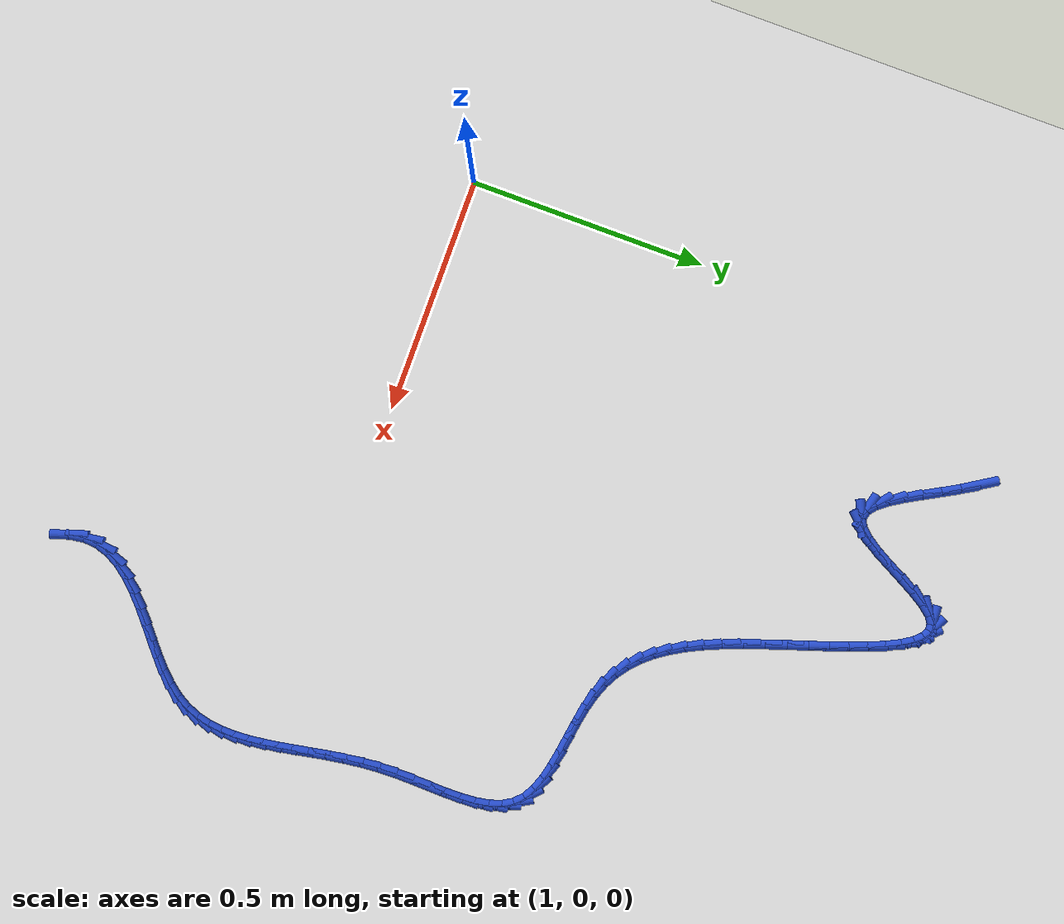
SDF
<sdf version="1.6">
 <world name="default">
  <model name="ground_plane">
   <static>1</static>
   <link name="link">
    <collision name="collision">
     <geometry><plane><normal>0 0 1</normal><size>100 100</size></plane></geometry>
     <surface><friction><ode><mu>100</mu><mu2>50</mu2></ode></friction></surface>
    </collision>
    <visual name="visual">
     <cast_shadows>0</cast_shadows>
     <geometry><plane><normal>0 0 1</normal><size>100 100</size></plane></geometry>
     <material>
      <script><uri>file://media/materials/scripts/gazebo.material</uri><name>Gazebo/WhiteGlow</name></script>
     </material>
    </visual>
   </link>
  </model>
  <model name="line">
   <link name="link_64">
    <pose>1.2318281928721742 1.193154807665097 0.01 0 1.57 -1.0102359897111801</pose>
    <collision name="collision">
     <geometry><cylinder><radius>0.01</radius><length>0.08</length></cylinder></geometry>
    </collision>
    <visual name="visual">
     <material>
      <script><name>Gazebo/Blue</name><uri>file://media/materials/scripts/gazebo.material</uri></script>
     </material>
     <geometry><cylinder><radius>0.01</radius><length>0.08</length></cylinder></geometry>
    </visual>
   </link>
   <link name="link_65">
    <pose>1.2534409527239607 1.1587248039642148 0.01 0 1.57 -1.053071669555847</pose>
    <collision name="collision">
     <geometry><cylinder><radius>0.01</radius><length>0.08</length></cylinder></geometry>
    </collision>
    <visual name="visual">
     <material>
      <script><name>Gazebo/Blue</name><uri>file://media/materials/scripts/gazebo.material</uri></script>
     </material>
     <geometry><cylinder><radius>0.01</radius><length>0.08</length></cylinder></geometry>
    </visual>
   </link>
   <link name="link_66">
    <pose>1.2736856391105966 1.1231794048080899 0.01 0 1.57 -1.0690586598774339</pose>
    <collision name="collision">
     <geometry><cylinder><radius>0.01</radius><length>0.08</length></cylinder></geometry>
    </collision>
    <visual name="visual">
     <material>
      <script><name>Gazebo/Blue</name><uri>file://media/materials/scripts/gazebo.material</uri></script>
     </material>
     <geometry><cylinder><radius>0.01</radius><length>0.08</length></cylinder></geometry>
    </visual>
   </link>
   <link name="link_67">
    <pose>1.2927958813953988 1.0883423572405484 0.01 0 1.57 -1.0575162492708503</pose>
    <collision name="collision">
     <geometry><cylinder><radius>0.01</radius><length>0.08</length></cylinder></geometry>
    </collision>
    <visual name="visual">
     <material>
      <script><name>Gazebo/Blue</name><uri>file://media/materials/scripts/gazebo.material</uri></script>
     </material>
     <geometry><cylinder><radius>0.01</radius><length>0.08</length></cylinder></geometry>
    </visual>
   </link>
   <link name="link_68">
    <pose>1.311005308941685 1.056037408305418 0.01 0 1.57 -1.0102939832576157</pose>
    <collision name="collision">
     <geometry><cylinder><radius>0.01</radius><length>0.08</length></cylinder></geometry>
    </collision>
    <visual name="visual">
     <material>
      <script><name>Gazebo/Blue</name><uri>file://media/materials/scripts/gazebo.material</uri></script>
     </material>
     <geometry><cylinder><radius>0.01</radius><length>0.08</length></cylinder></geometry>
    </visual>
   </link>
   <link name="link_69">
    <pose>1.328547551112773 1.0280883050465264 0.01 0 1.57 -0.9047114830860191</pose>
    <collision name="collision">
     <geometry><cylinder><radius>0.01</radius><length>0.08</length></cylinder></geometry>
    </collision>
    <visual name="visual">
     <material>
      <script><name>Gazebo/Blue</name><uri>file://media/materials/scripts/gazebo.material</uri></script>
     </material>
     <geometry><cylinder><radius>0.01</radius><length>0.08</length></cylinder></geometry>
    </visual>
   </link>
   <link name="link_70">
    <pose>1.3456562372719796 1.0063187945077003 0.01 0 1.57 -0.6833062283939995</pose>
    <collision name="collision">
     <geometry><cylinder><radius>0.01</radius><length>0.08</length></cylinder></geometry>
    </collision>
    <visual name="visual">
     <material>
      <script><name>Gazebo/Blue</name><uri>file://media/materials/scripts/gazebo.material</uri></script>
     </material>
     <geometry><cylinder><radius>0.01</radius><length>0.08</length></cylinder></geometry>
    </visual>
   </link>
   <link name="link_71">
    <pose>1.3625649967826232 0.9925526237327684 0.01 0 1.57 -0.22843932622265642</pose>
    <collision name="collision">
     <geometry><cylinder><radius>0.01</radius><length>0.08</length></cylinder></geometry>
    </collision>
    <visual name="visual">
     <material>
      <script><name>Gazebo/Blue</name><uri>file://media/materials/scripts/gazebo.material</uri></script>
     </material>
     <geometry><cylinder><radius>0.01</radius><length>0.08</length></cylinder></geometry>
    </visual>
   </link>
   <link name="link_72">
    <pose>1.379507459008021 0.9886135397655573 0.01 0 1.57 0.4169734276962123</pose>
    <collision name="collision">
     <geometry><cylinder><radius>0.01</radius><length>0.08</length></cylinder></geometry>
    </collision>
    <visual name="visual">
     <material>
      <script><name>Gazebo/Blue</name><uri>file://media/materials/scripts/gazebo.material</uri></script>
     </material>
     <geometry><cylinder><radius>0.01</radius><length>0.08</length></cylinder></geometry>
    </visual>
   </link>
   <link name="link_73">
    <pose>1.3967104704649411 0.9962335669396227 0.01 0 1.57 0.8158626864036016</pose>
    <collision name="collision">
     <geometry><cylinder><radius>0.01</radius><length>0.08</length></cylinder></geometry>
    </collision>
    <visual name="visual">
     <material>
      <script><name>Gazebo/Blue</name><uri>file://media/materials/scripts/gazebo.material</uri></script>
     </material>
     <geometry><cylinder><radius>0.01</radius><length>0.08</length></cylinder></geometry>
    </visual>
   </link>
   <link name="link_74">
    <pose>1.4142316407036575 1.0148561810959766 0.01 0 1.57 0.9844576759614901</pose>
    <collision name="collision">
     <geometry><cylinder><radius>0.01</radius><length>0.08</length></cylinder></geometry>
    </collision>
    <visual name="visual">
     <material>
      <script><name>Gazebo/Blue</name><uri>file://media/materials/scripts/gazebo.material</uri></script>
     </material>
     <geometry><cylinder><radius>0.01</radius><length>0.08</length></cylinder></geometry>
    </visual>
   </link>
   <link name="link_75">
    <pose>1.431951647797774 1.041532258677254 0.01 0 1.57 1.0589342393385386</pose>
    <collision name="collision">
     <geometry><cylinder><radius>0.01</radius><length>0.08</length></cylinder></geometry>
    </collision>
    <visual name="visual">
     <material>
      <script><name>Gazebo/Blue</name><uri>file://media/materials/scripts/gazebo.material</uri></script>
     </material>
     <geometry><cylinder><radius>0.01</radius><length>0.08</length></cylinder></geometry>
    </visual>
   </link>
   <link name="link_76">
    <pose>1.449742847118545 1.0732001303371388 0.01 0 1.57 1.0851167111516353</pose>
    <collision name="collision">
     <geometry><cylinder><radius>0.01</radius><length>0.08</length></cylinder></geometry>
    </collision>
    <visual name="visual">
     <material>
      <script><name>Gazebo/Blue</name><uri>file://media/materials/scripts/gazebo.material</uri></script>
     </material>
     <geometry><cylinder><radius>0.01</radius><length>0.08</length></cylinder></geometry>
    </visual>
   </link>
   <link name="link_77">
    <pose>1.467477594037226 1.1067981267293165 0.01 0 1.57 1.075215656911883</pose>
    <collision name="collision">
     <geometry><cylinder><radius>0.01</radius><length>0.08</length></cylinder></geometry>
    </collision>
    <visual name="visual">
     <material>
      <script><name>Gazebo/Blue</name><uri>file://media/materials/scripts/gazebo.material</uri></script>
     </material>
     <geometry><cylinder><radius>0.01</radius><length>0.08</length></cylinder></geometry>
    </visual>
   </link>
   <link name="link_78">
    <pose>1.485028243925071 1.139264578507472 0.01 0 1.57 1.0232565462930423</pose>
    <collision name="collision">
     <geometry><cylinder><radius>0.01</radius><length>0.08</length></cylinder></geometry>
    </collision>
    <visual name="visual">
     <material>
      <script><name>Gazebo/Blue</name><uri>file://media/materials/scripts/gazebo.material</uri></script>
     </material>
     <geometry><cylinder><radius>0.01</radius><length>0.08</length></cylinder></geometry>
    </visual>
   </link>
   <link name="link_79">
    <pose>1.5022671521533357 1.16753781632529 0.01 0 1.57 0.8964953892235833</pose>
    <collision name="collision">
     <geometry><cylinder><radius>0.01</radius><length>0.08</length></cylinder></geometry>
    </collision>
    <visual name="visual">
     <material>
      <script><name>Gazebo/Blue</name><uri>file://media/materials/scripts/gazebo.material</uri></script>
     </material>
     <geometry><cylinder><radius>0.01</radius><length>0.08</length></cylinder></geometry>
    </visual>
   </link>
   <link name="link_80">
    <pose>1.519066674093275 1.1885561708364554 0.01 0 1.57 0.5973142222093142</pose>
    <collision name="collision">
     <geometry><cylinder><radius>0.01</radius><length>0.08</length></cylinder></geometry>
    </collision>
    <visual name="visual">
     <material>
      <script><name>Gazebo/Blue</name><uri>file://media/materials/scripts/gazebo.material</uri></script>
     </material>
     <geometry><cylinder><radius>0.01</radius><length>0.08</length></cylinder></geometry>
    </visual>
   </link>
   <link name="link_81">
    <pose>1.5353161459589473 1.1996090809783737 0.01 0 1.57 0.06145879175149195</pose>
    <collision name="collision">
     <geometry><cylinder><radius>0.01</radius><length>0.08</length></cylinder></geometry>
    </collision>
    <visual name="visual">
     <material>
      <script><name>Gazebo/Blue</name><uri>file://media/materials/scripts/gazebo.material</uri></script>
     </material>
     <geometry><cylinder><radius>0.01</radius><length>0.08</length></cylinder></geometry>
    </visual>
   </link>
   <link name="link_82">
    <pose>1.5510301693284363 1.200576063665122 0.01 0 1.57 -0.4872737740554275</pose>
    <collision name="collision">
     <geometry><cylinder><radius>0.01</radius><length>0.08</length></cylinder></geometry>
    </collision>
    <visual name="visual">
     <material>
      <script><name>Gazebo/Blue</name><uri>file://media/materials/scripts/gazebo.material</uri></script>
     </material>
     <geometry><cylinder><radius>0.01</radius><length>0.08</length></cylinder></geometry>
    </visual>
   </link>
   <link name="link_83">
    <pose>1.5662793987782426 1.1924956284649095 0.01 0 1.57 -0.8250862120483109</pose>
    <collision name="collision">
     <geometry><cylinder><radius>0.01</radius><length>0.08</length></cylinder></geometry>
    </collision>
    <visual name="visual">
     <material>
      <script><name>Gazebo/Blue</name><uri>file://media/materials/scripts/gazebo.material</uri></script>
     </material>
     <geometry><cylinder><radius>0.01</radius><length>0.08</length></cylinder></geometry>
    </visual>
   </link>
   <link name="link_84">
    <pose>1.5811347513349172 1.1764117115545456 0.01 0 1.57 -1.008143375554437</pose>
    <collision name="collision">
     <geometry><cylinder><radius>0.01</radius><length>0.08</length></cylinder></geometry>
    </collision>
    <visual name="visual">
     <material>
      <script><name>Gazebo/Blue</name><uri>file://media/materials/scripts/gazebo.material</uri></script>
     </material>
     <geometry><cylinder><radius>0.01</radius><length>0.08</length></cylinder></geometry>
    </visual>
   </link>
   <link name="link_85">
    <pose>1.5956671440250128 1.1533682491108381 0.01 0 1.57 -1.1126663960485272</pose>
    <collision name="collision">
     <geometry><cylinder><radius>0.01</radius><length>0.08</length></cylinder></geometry>
    </collision>
    <visual name="visual">
     <material>
      <script><name>Gazebo/Blue</name><uri>file://media/materials/scripts/gazebo.material</uri></script>
     </material>
     <geometry><cylinder><radius>0.01</radius><length>0.08</length></cylinder></geometry>
    </visual>
   </link>
   <link name="link_86">
    <pose>1.6099474938750808 1.1244091773105958 0.01 0 1.57 -1.1759276283967097</pose>
    <collision name="collision">
     <geometry><cylinder><radius>0.01</radius><length>0.08</length></cylinder></geometry>
    </collision>
    <visual name="visual">
     <material>
      <script><name>Gazebo/Blue</name><uri>file://media/materials/scripts/gazebo.material</uri></script>
     </material>
     <geometry><cylinder><radius>0.01</radius><length>0.08</length></cylinder></geometry>
    </visual>
   </link>
   <link name="link_87">
    <pose>1.6240467179116738 1.0905784323306267 0.01 0 1.57 -1.21512359483028</pose>
    <collision name="collision">
     <geometry><cylinder><radius>0.01</radius><length>0.08</length></cylinder></geometry>
    </collision>
    <visual name="visual">
     <material>
      <script><name>Gazebo/Blue</name><uri>file://media/materials/scripts/gazebo.material</uri></script>
     </material>
     <geometry><cylinder><radius>0.01</radius><length>0.08</length></cylinder></geometry>
    </visual>
   </link>
   <link name="link_88">
    <pose>1.6380357331613435 1.0529199503477409 0.01 0 1.57 -1.2386460637239534</pose>
    <collision name="collision">
     <geometry><cylinder><radius>0.01</radius><length>0.08</length></cylinder></geometry>
    </collision>
    <visual name="visual">
     <material>
      <script><name>Gazebo/Blue</name><uri>file://media/materials/scripts/gazebo.material</uri></script>
     </material>
     <geometry><cylinder><radius>0.01</radius><length>0.08</length></cylinder></geometry>
    </visual>
   </link>
   <link name="link_89">
    <pose>1.6519854566506427 1.0124776675387448 0.01 0 1.57 -1.250740106039297</pose>
    <collision name="collision">
     <geometry><cylinder><radius>0.01</radius><length>0.08</length></cylinder></geometry>
    </collision>
    <visual name="visual">
     <material>
      <script><name>Gazebo/Blue</name><uri>file://media/materials/scripts/gazebo.material</uri></script>
     </material>
     <geometry><cylinder><radius>0.01</radius><length>0.08</length></cylinder></geometry>
    </visual>
   </link>
   <link name="link_90">
    <pose>1.6659668054061223 0.970295520080448 0.01 0 1.57 -1.2534348350408981</pose>
    <collision name="collision">
     <geometry><cylinder><radius>0.01</radius><length>0.08</length></cylinder></geometry>
    </collision>
    <visual name="visual">
     <material>
      <script><name>Gazebo/Blue</name><uri>file://media/materials/scripts/gazebo.material</uri></script>
     </material>
     <geometry><cylinder><radius>0.01</radius><length>0.08</length></cylinder></geometry>
    </visual>
   </link>
   <link name="link_91">
    <pose>1.6800506964543351 0.9274174441496585 0.01 0 1.57 -1.2473398378743825</pose>
    <collision name="collision">
     <geometry><cylinder><radius>0.01</radius><length>0.08</length></cylinder></geometry>
    </collision>
    <visual name="visual">
     <material>
      <script><name>Gazebo/Blue</name><uri>file://media/materials/scripts/gazebo.material</uri></script>
     </material>
     <geometry><cylinder><radius>0.01</radius><length>0.08</length></cylinder></geometry>
    </visual>
   </link>
   <link name="link_92">
    <pose>1.6943080468218334 0.8848873759231856 0.01 0 1.57 -1.231884444463375</pose>
    <collision name="collision">
     <geometry><cylinder><radius>0.01</radius><length>0.08</length></cylinder></geometry>
    </collision>
    <visual name="visual">
     <material>
      <script><name>Gazebo/Blue</name><uri>file://media/materials/scripts/gazebo.material</uri></script>
     </material>
     <geometry><cylinder><radius>0.01</radius><length>0.08</length></cylinder></geometry>
    </visual>
   </link>
   <link name="link_93">
    <pose>1.7088097735351686 0.843749251577837 0.01 0 1.57 -1.2051815474425123</pose>
    <collision name="collision">
     <geometry><cylinder><radius>0.01</radius><length>0.08</length></cylinder></geometry>
    </collision>
    <visual name="visual">
     <material>
      <script><name>Gazebo/Blue</name><uri>file://media/materials/scripts/gazebo.material</uri></script>
     </material>
     <geometry><cylinder><radius>0.01</radius><length>0.08</length></cylinder></geometry>
    </visual>
   </link>
   <link name="link_94">
    <pose>1.7236275622652655 0.8050430015991522 0.01 0 1.57 -1.1654365827859257</pose>
    <collision name="collision">
     <geometry><cylinder><radius>0.01</radius><length>0.08</length></cylinder></geometry>
    </collision>
    <visual name="visual">
     <material>
      <script><name>Gazebo/Blue</name><uri>file://media/materials/scripts/gazebo.material</uri></script>
     </material>
     <geometry><cylinder><radius>0.01</radius><length>0.08</length></cylinder></geometry>
    </visual>
   </link>
   <link name="link_95">
    <pose>1.7389022866780592 0.7694479921370173 0.01 0 1.57 -1.1127717275587845</pose>
    <collision name="collision">
     <geometry><cylinder><radius>0.01</radius><length>0.08</length></cylinder></geometry>
    </collision>
    <visual name="visual">
     <material>
      <script><name>Gazebo/Blue</name><uri>file://media/materials/scripts/gazebo.material</uri></script>
     </material>
     <geometry><cylinder><radius>0.01</radius><length>0.08</length></cylinder></geometry>
    </visual>
   </link>
   <link name="link_96">
    <pose>1.75489797788547 0.7370017701545212 0.01 0 1.57 -1.0456141057106518</pose>
    <collision name="collision">
     <geometry><cylinder><radius>0.01</radius><length>0.08</length></cylinder></geometry>
    </collision>
    <visual name="visual">
     <material>
      <script><name>Gazebo/Blue</name><uri>file://media/materials/scripts/gazebo.material</uri></script>
     </material>
     <geometry><cylinder><radius>0.01</radius><length>0.08</length></cylinder></geometry>
    </visual>
   </link>
   <link name="link_97">
    <pose>1.7718913679340185 0.7076756933279443 0.01 0 1.57 -0.9625402651197941</pose>
    <collision name="collision">
     <geometry><cylinder><radius>0.01</radius><length>0.08</length></cylinder></geometry>
    </collision>
    <visual name="visual">
     <material>
      <script><name>Gazebo/Blue</name><uri>file://media/materials/scripts/gazebo.material</uri></script>
     </material>
     <geometry><cylinder><radius>0.01</radius><length>0.08</length></cylinder></geometry>
    </visual>
   </link>
   <link name="link_98">
    <pose>1.7901591888702244 0.6814411193335674 0.01 0 1.57 -0.8632279589489806</pose>
    <collision name="collision">
     <geometry><cylinder><radius>0.01</radius><length>0.08</length></cylinder></geometry>
    </collision>
    <visual name="visual">
     <material>
      <script><name>Gazebo/Blue</name><uri>file://media/materials/scripts/gazebo.material</uri></script>
     </material>
     <geometry><cylinder><radius>0.01</radius><length>0.08</length></cylinder></geometry>
    </visual>
   </link>
   <link name="link_99">
    <pose>1.8099781727406061 0.6582694058476706 0.01 0 1.57 -0.7492907052546256</pose>
    <collision name="collision">
     <geometry><cylinder><radius>0.01</radius><length>0.08</length></cylinder></geometry>
    </collision>
    <visual name="visual">
     <material>
      <script><name>Gazebo/Blue</name><uri>file://media/materials/scripts/gazebo.material</uri></script>
     </material>
     <geometry><cylinder><radius>0.01</radius><length>0.08</length></cylinder></geometry>
    </visual>
   </link>
   <link name="link_100">
    <pose>1.831625051591684 0.6381319105465345 0.01 0 1.57 -0.6248775334772148</pose>
    <collision name="collision">
     <geometry><cylinder><radius>0.01</radius><length>0.08</length></cylinder></geometry>
    </collision>
    <visual name="visual">
     <material>
      <script><name>Gazebo/Blue</name><uri>file://media/materials/scripts/gazebo.material</uri></script>
     </material>
     <geometry><cylinder><radius>0.01</radius><length>0.08</length></cylinder></geometry>
    </visual>
   </link>
   <link name="link_101">
    <pose>1.8553765574699774 0.6209999911064393 0.01 0 1.57 -0.4964134059241373</pose>
    <collision name="collision">
     <geometry><cylinder><radius>0.01</radius><length>0.08</length></cylinder></geometry>
    </collision>
    <visual name="visual">
     <material>
      <script><name>Gazebo/Blue</name><uri>file://media/materials/scripts/gazebo.material</uri></script>
     </material>
     <geometry><cylinder><radius>0.01</radius><length>0.08</length></cylinder></geometry>
    </visual>
   </link>
   <link name="link_102">
    <pose>1.881509422422006 0.6068450052036657 0.01 0 1.57 -0.37119975317043225</pose>
    <collision name="collision">
     <geometry><cylinder><radius>0.01</radius><length>0.08</length></cylinder></geometry>
    </collision>
    <visual name="visual">
     <material>
      <script><name>Gazebo/Blue</name><uri>file://media/materials/scripts/gazebo.material</uri></script>
     </material>
     <geometry><cylinder><radius>0.01</radius><length>0.08</length></cylinder></geometry>
    </visual>
   </link>
   <link name="link_103">
    <pose>1.9103003657141358 0.59563830193881 0.01 0 1.57 -0.26215447934270253</pose>
    <collision name="collision">
     <geometry><cylinder><radius>0.01</radius><length>0.08</length></cylinder></geometry>
    </collision>
    <visual name="visual">
     <material>
      <script><name>Gazebo/Blue</name><uri>file://media/materials/scripts/gazebo.material</uri></script>
     </material>
     <geometry><cylinder><radius>0.01</radius><length>0.08</length></cylinder></geometry>
    </visual>
   </link>
   <link name="link_104">
    <pose>1.9417856299844878 0.5871898668135281 0.01 0 1.57 -0.1911143800867486</pose>
    <collision name="collision">
     <geometry><cylinder><radius>0.01</radius><length>0.08</length></cylinder></geometry>
    </collision>
    <visual name="visual">
     <material>
      <script><name>Gazebo/Blue</name><uri>file://media/materials/scripts/gazebo.material</uri></script>
     </material>
     <geometry><cylinder><radius>0.01</radius><length>0.08</length></cylinder></geometry>
    </visual>
   </link>
   <link name="link_105">
    <pose>1.9751457533608456 0.5807354941474635 0.01 0 1.57 -0.15512445929600951</pose>
    <collision name="collision">
     <geometry><cylinder><radius>0.01</radius><length>0.08</length></cylinder></geometry>
    </collision>
    <visual name="visual">
     <material>
      <script><name>Gazebo/Blue</name><uri>file://media/materials/scripts/gazebo.material</uri></script>
     </material>
     <geometry><cylinder><radius>0.01</radius><length>0.08</length></cylinder></geometry>
    </visual>
   </link>
   <link name="link_106">
    <pose>2.009371024124663 0.5753833176217773 0.01 0 1.57 -0.14974329163996078</pose>
    <collision name="collision">
     <geometry><cylinder><radius>0.01</radius><length>0.08</length></cylinder></geometry>
    </collision>
    <visual name="visual">
     <material>
      <script><name>Gazebo/Blue</name><uri>file://media/materials/scripts/gazebo.material</uri></script>
     </material>
     <geometry><cylinder><radius>0.01</radius><length>0.08</length></cylinder></geometry>
    </visual>
   </link>
   <link name="link_107">
    <pose>2.0434517305573934 0.5702414709176318 0.01 0 1.57 -0.17505025844257657</pose>
    <collision name="collision">
     <geometry><cylinder><radius>0.01</radius><length>0.08</length></cylinder></geometry>
    </collision>
    <visual name="visual">
     <material>
      <script><name>Gazebo/Blue</name><uri>file://media/materials/scripts/gazebo.material</uri></script>
     </material>
     <geometry><cylinder><radius>0.01</radius><length>0.08</length></cylinder></geometry>
    </visual>
   </link>
   <link name="link_108">
    <pose>2.0763781609404908 0.5644180877161884 0.01 0 1.57 -0.23596909801744287</pose>
    <collision name="collision">
     <geometry><cylinder><radius>0.01</radius><length>0.08</length></cylinder></geometry>
    </collision>
    <visual name="visual">
     <material>
      <script><name>Gazebo/Blue</name><uri>file://media/materials/scripts/gazebo.material</uri></script>
     </material>
     <geometry><cylinder><radius>0.01</radius><length>0.08</length></cylinder></geometry>
    </visual>
   </link>
   <link name="link_109">
    <pose>2.1071406035554094 0.5570213016986091 0.01 0 1.57 -0.3433110618120344</pose>
    <collision name="collision">
     <geometry><cylinder><radius>0.01</radius><length>0.08</length></cylinder></geometry>
    </collision>
    <visual name="visual">
     <material>
      <script><name>Gazebo/Blue</name><uri>file://media/materials/scripts/gazebo.material</uri></script>
     </material>
     <geometry><cylinder><radius>0.01</radius><length>0.08</length></cylinder></geometry>
    </visual>
   </link>
   <link name="link_110">
    <pose>2.134729346683602 0.5471592465460554 0.01 0 1.57 -0.5141303612223748</pose>
    <collision name="collision">
     <geometry><cylinder><radius>0.01</radius><length>0.08</length></cylinder></geometry>
    </collision>
    <visual name="visual">
     <material>
      <script><name>Gazebo/Blue</name><uri>file://media/materials/scripts/gazebo.material</uri></script>
     </material>
     <geometry><cylinder><radius>0.01</radius><length>0.08</length></cylinder></geometry>
    </visual>
   </link>
   <link name="link_111">
    <pose>2.158134678606523 0.5339400559396891 0.01 0 1.57 -0.7627083555842279</pose>
    <collision name="collision">
     <geometry><cylinder><radius>0.01</radius><length>0.08</length></cylinder></geometry>
    </collision>
    <visual name="visual">
     <material>
      <script><name>Gazebo/Blue</name><uri>file://media/materials/scripts/gazebo.material</uri></script>
     </material>
     <geometry><cylinder><radius>0.01</radius><length>0.08</length></cylinder></geometry>
    </visual>
   </link>
   <link name="link_112">
    <pose>2.176383747959157 0.5165008848936053 0.01 0 1.57 -1.0337510414744209</pose>
    <collision name="collision">
     <geometry><cylinder><radius>0.01</radius><length>0.08</length></cylinder></geometry>
    </collision>
    <visual name="visual">
     <material>
      <script><name>Gazebo/Blue</name><uri>file://media/materials/scripts/gazebo.material</uri></script>
     </material>
     <geometry><cylinder><radius>0.01</radius><length>0.08</length></cylinder></geometry>
    </visual>
   </link>
   <link name="link_113">
    <pose>2.1893820426657147 0.4946704329812976 0.01 0 1.57 -1.2495347933624272</pose>
    <collision name="collision">
     <geometry><cylinder><radius>0.01</radius><length>0.08</length></cylinder></geometry>
    </collision>
    <visual name="visual">
     <material>
      <script><name>Gazebo/Blue</name><uri>file://media/materials/scripts/gazebo.material</uri></script>
     </material>
     <geometry><cylinder><radius>0.01</radius><length>0.08</length></cylinder></geometry>
    </visual>
   </link>
   <link name="link_114">
    <pose>2.197930705730029 0.46898257761015977 0.01 0 1.57 -1.4019379956877445</pose>
    <collision name="collision">
     <geometry><cylinder><radius>0.01</radius><length>0.08</length></cylinder></geometry>
    </collision>
    <visual name="visual">
     <material>
      <script><name>Gazebo/Blue</name><uri>file://media/materials/scripts/gazebo.material</uri></script>
     </material>
     <geometry><cylinder><radius>0.01</radius><length>0.08</length></cylinder></geometry>
    </visual>
   </link>
   <link name="link_115">
    <pose>2.202871204081309 0.44000294450119326 0.01 0 1.57 -1.5023418158410164</pose>
    <collision name="collision">
     <geometry><cylinder><radius>0.01</radius><length>0.08</length></cylinder></geometry>
    </collision>
    <visual name="visual">
     <material>
      <script><name>Gazebo/Blue</name><uri>file://media/materials/scripts/gazebo.material</uri></script>
     </material>
     <geometry><cylinder><radius>0.01</radius><length>0.08</length></cylinder></geometry>
    </visual>
   </link>
   <link name="link_116">
    <pose>2.205045004648763 0.4082971593753993 0.01 0 1.57 -1.5634567247265487</pose>
    <collision name="collision">
     <geometry><cylinder><radius>0.01</radius><length>0.08</length></cylinder></geometry>
    </collision>
    <visual name="visual">
     <material>
      <script><name>Gazebo/Blue</name><uri>file://media/materials/scripts/gazebo.material</uri></script>
     </material>
     <geometry><cylinder><radius>0.01</radius><length>0.08</length></cylinder></geometry>
    </visual>
   </link>
   <link name="link_117">
    <pose>2.2052935743616 0.37443084795377923 0.01 0 1.57 1.5472483489875726</pose>
    <collision name="collision">
     <geometry><cylinder><radius>0.01</radius><length>0.08</length></cylinder></geometry>
    </collision>
    <visual name="visual">
     <material>
      <script><name>Gazebo/Blue</name><uri>file://media/materials/scripts/gazebo.material</uri></script>
     </material>
     <geometry><cylinder><radius>0.01</radius><length>0.08</length></cylinder></geometry>
    </visual>
   </link>
   <link name="link_118">
    <pose>2.2044583801490285 0.33896963595733465 0.01 0 1.57 1.5412769010611083</pose>
    <collision name="collision">
     <geometry><cylinder><radius>0.01</radius><length>0.08</length></cylinder></geometry>
    </collision>
    <visual name="visual">
     <material>
      <script><name>Gazebo/Blue</name><uri>file://media/materials/scripts/gazebo.material</uri></script>
     </material>
     <geometry><cylinder><radius>0.01</radius><length>0.08</length></cylinder></geometry>
    </visual>
   </link>
   <link name="link_119">
    <pose>2.203380888940258 0.3024791491070667 0.01 0 1.57 1.557853402995061</pose>
    <collision name="collision">
     <geometry><cylinder><radius>0.01</radius><length>0.08</length></cylinder></geometry>
    </collision>
    <visual name="visual">
     <material>
      <script><name>Gazebo/Blue</name><uri>file://media/materials/scripts/gazebo.material</uri></script>
     </material>
     <geometry><cylinder><radius>0.01</radius><length>0.08</length></cylinder></geometry>
    </visual>
   </link>
   <link name="link_120">
    <pose>2.202902567664497 0.2655250131239773 0.01 0 1.57 -1.5447426219556268</pose>
    <collision name="collision">
     <geometry><cylinder><radius>0.01</radius><length>0.08</length></cylinder></geometry>
    </collision>
    <visual name="visual">
     <material>
      <script><name>Gazebo/Blue</name><uri>file://media/materials/scripts/gazebo.material</uri></script>
     </material>
     <geometry><cylinder><radius>0.01</radius><length>0.08</length></cylinder></geometry>
    </visual>
   </link>
   <link name="link_121">
    <pose>2.203862940289536 0.22867208482665202 0.01 0 1.57 -1.492257822886155</pose>
    <collision name="collision">
     <geometry><cylinder><radius>0.01</radius><length>0.08</length></cylinder></geometry>
    </collision>
    <visual name="visual">
     <material>
      <script><name>Gazebo/Blue</name><uri>file://media/materials/scripts/gazebo.material</uri></script>
     </material>
     <geometry><cylinder><radius>0.01</radius><length>0.08</length></cylinder></geometry>
    </visual>
   </link>
   <link name="link_122">
    <pose>2.2067226602503127 0.19233528781066658 0.01 0 1.57 -1.448554488308322</pose>
    <collision name="collision">
     <geometry><cylinder><radius>0.01</radius><length>0.08</length></cylinder></geometry>
    </collision>
    <visual name="visual">
     <material>
      <script><name>Gazebo/Blue</name><uri>file://media/materials/scripts/gazebo.material</uri></script>
     </material>
     <geometry><cylinder><radius>0.01</radius><length>0.08</length></cylinder></geometry>
    </visual>
   </link>
   <link name="link_123">
    <pose>2.2111127463203606 0.15660122824408598 0.01 0 1.57 -1.4169383202871435</pose>
    <collision name="collision">
     <geometry><cylinder><radius>0.01</radius><length>0.08</length></cylinder></geometry>
    </collision>
    <visual name="visual">
     <material>
      <script><name>Gazebo/Blue</name><uri>file://media/materials/scripts/gazebo.material</uri></script>
     </material>
     <geometry><cylinder><radius>0.01</radius><length>0.08</length></cylinder></geometry>
    </visual>
   </link>
   <link name="link_124">
    <pose>2.2165543521838202 0.12151303457496104 0.01 0 1.57 -1.3977080728461595</pose>
    <collision name="collision">
     <geometry><cylinder><radius>0.01</radius><length>0.08</length></cylinder></geometry>
    </collision>
    <visual name="visual">
     <material>
      <script><name>Gazebo/Blue</name><uri>file://media/materials/scripts/gazebo.material</uri></script>
     </material>
     <geometry><cylinder><radius>0.01</radius><length>0.08</length></cylinder></geometry>
    </visual>
   </link>
   <link name="link_125">
    <pose>2.2225686315248345 0.08711383525134275 0.01 0 1.57 -1.391321810106996</pose>
    <collision name="collision">
     <geometry><cylinder><radius>0.01</radius><length>0.08</length></cylinder></geometry>
    </collision>
    <visual name="visual">
     <material>
      <script><name>Gazebo/Blue</name><uri>file://media/materials/scripts/gazebo.material</uri></script>
     </material>
     <geometry><cylinder><radius>0.01</radius><length>0.08</length></cylinder></geometry>
    </visual>
   </link>
   <link name="link_126">
    <pose>2.2286767380275445 0.053446758721281976 0.01 0 1.57 -1.3985237731025708</pose>
    <collision name="collision">
     <geometry><cylinder><radius>0.01</radius><length>0.08</length></cylinder></geometry>
    </collision>
    <visual name="visual">
     <material>
      <script><name>Gazebo/Blue</name><uri>file://media/materials/scripts/gazebo.material</uri></script>
     </material>
     <geometry><cylinder><radius>0.01</radius><length>0.08</length></cylinder></geometry>
    </visual>
   </link>
   <link name="link_127">
    <pose>2.2343998253760917 0.020554933432829683 0.01 0 1.57 -1.4204368187715144</pose>
    <collision name="collision">
     <geometry><cylinder><radius>0.01</radius><length>0.08</length></cylinder></geometry>
    </collision>
    <visual name="visual">
     <material>
      <script><name>Gazebo/Blue</name><uri>file://media/materials/scripts/gazebo.material</uri></script>
     </material>
     <geometry><cylinder><radius>0.01</radius><length>0.08</length></cylinder></geometry>
    </visual>
   </link>
   <link name="link_128">
    <pose>2.239259047254618 -0.011518512165963182 0.01 0 1.57 -1.458603886684868</pose>
    <collision name="collision">
     <geometry><cylinder><radius>0.01</radius><length>0.08</length></cylinder></geometry>
    </collision>
    <visual name="visual">
     <material>
      <script><name>Gazebo/Blue</name><uri>file://media/materials/scripts/gazebo.material</uri></script>
     </material>
     <geometry><cylinder><radius>0.01</radius><length>0.08</length></cylinder></geometry>
    </visual>
   </link>
   <link name="link_129">
    <pose>2.2427755573472656 -0.0427304496270457 0.01 0 1.57 -1.5149289888982151</pose>
    <collision name="collision">
     <geometry><cylinder><radius>0.01</radius><length>0.08</length></cylinder></geometry>
    </collision>
    <visual name="visual">
     <material>
      <script><name>Gazebo/Blue</name><uri>file://media/materials/scripts/gazebo.material</uri></script>
     </material>
     <geometry><cylinder><radius>0.01</radius><length>0.08</length></cylinder></geometry>
    </visual>
   </link>
   <link name="link_130">
    <pose>2.244470509338175 -0.07303775050236694 0.01 0 1.57 1.5501772466590393</pose>
    <collision name="collision">
     <geometry><cylinder><radius>0.01</radius><length>0.08</length></cylinder></geometry>
    </collision>
    <visual name="visual">
     <material>
      <script><name>Gazebo/Blue</name><uri>file://media/materials/scripts/gazebo.material</uri></script>
     </material>
     <geometry><cylinder><radius>0.01</radius><length>0.08</length></cylinder></geometry>
    </visual>
   </link>
   <link name="link_131">
    <pose>2.243865056911489 -0.10239728634387593 0.01 0 1.57 1.452046255727462</pose>
    <collision name="collision">
     <geometry><cylinder><radius>0.01</radius><length>0.08</length></cylinder></geometry>
    </collision>
    <visual name="visual">
     <material>
      <script><name>Gazebo/Blue</name><uri>file://media/materials/scripts/gazebo.material</uri></script>
     </material>
     <geometry><cylinder><radius>0.01</radius><length>0.08</length></cylinder></geometry>
    </visual>
   </link>
   <link name="link_132">
    <pose>2.240480353751348 -0.13076592870352186 0.01 0 1.57 1.3323998341196024</pose>
    <collision name="collision">
     <geometry><cylinder><radius>0.01</radius><length>0.08</length></cylinder></geometry>
    </collision>
    <visual name="visual">
     <material>
      <script><name>Gazebo/Blue</name><uri>file://media/materials/scripts/gazebo.material</uri></script>
     </material>
     <geometry><cylinder><radius>0.01</radius><length>0.08</length></cylinder></geometry>
    </visual>
   </link>
   <link name="link_133">
    <pose>2.233837553541895 -0.1581005491332537 0.01 0 1.57 1.1943427722668198</pose>
    <collision name="collision">
     <geometry><cylinder><radius>0.01</radius><length>0.08</length></cylinder></geometry>
    </collision>
    <visual name="visual">
     <material>
      <script><name>Gazebo/Blue</name><uri>file://media/materials/scripts/gazebo.material</uri></script>
     </material>
     <geometry><cylinder><radius>0.01</radius><length>0.08</length></cylinder></geometry>
    </visual>
   </link>
   <link name="link_134">
    <pose>2.223457809967271 -0.18435801918502054 0.01 0 1.57 1.0447381351443417</pose>
    <collision name="collision">
     <geometry><cylinder><radius>0.01</radius><length>0.08</length></cylinder></geometry>
    </collision>
    <visual name="visual">
     <material>
      <script><name>Gazebo/Blue</name><uri>file://media/materials/scripts/gazebo.material</uri></script>
     </material>
     <geometry><cylinder><radius>0.01</radius><length>0.08</length></cylinder></geometry>
    </visual>
   </link>
   <link name="link_135">
    <pose>2.2088622956749817 -0.209495214503238 0.01 0 1.57 0.9016690727951508</pose>
    <collision name="collision">
     <geometry><cylinder><radius>0.01</radius><length>0.08</length></cylinder></geometry>
    </collision>
    <visual name="visual">
     <material>
      <script><name>Gazebo/Blue</name><uri>file://media/materials/scripts/gazebo.material</uri></script>
     </material>
     <geometry><cylinder><radius>0.01</radius><length>0.08</length></cylinder></geometry>
    </visual>
   </link>
   <link name="link_136">
    <pose>2.189854760483718 -0.2335299934557681 0.01 0 1.57 0.7973004867766293</pose>
    <collision name="collision">
     <geometry><cylinder><radius>0.01</radius><length>0.08</length></cylinder></geometry>
    </collision>
    <visual name="visual">
     <material>
      <script><name>Gazebo/Blue</name><uri>file://media/materials/scripts/gazebo.material</uri></script>
     </material>
     <geometry><cylinder><radius>0.01</radius><length>0.08</length></cylinder></geometry>
    </visual>
   </link>
   <link name="link_137">
    <pose>2.1672346381259424 -0.2566950920543378 0.01 0 1.57 0.7302406600287139</pose>
    <collision name="collision">
     <geometry><cylinder><radius>0.01</radius><length>0.08</length></cylinder></geometry>
    </collision>
    <visual name="visual">
     <material>
      <script><name>Gazebo/Blue</name><uri>file://media/materials/scripts/gazebo.material</uri></script>
     </material>
     <geometry><cylinder><radius>0.01</radius><length>0.08</length></cylinder></geometry>
    </visual>
   </link>
   <link name="link_138">
    <pose>2.142020552357673 -0.27927054951118574 0.01 0 1.57 0.6934444946404545</pose>
    <collision name="collision">
     <geometry><cylinder><radius>0.01</radius><length>0.08</length></cylinder></geometry>
    </collision>
    <visual name="visual">
     <material>
      <script><name>Gazebo/Blue</name><uri>file://media/materials/scripts/gazebo.material</uri></script>
     </material>
     <geometry><cylinder><radius>0.01</radius><length>0.08</length></cylinder></geometry>
    </visual>
   </link>
   <link name="link_139">
    <pose>2.1152311269349235 -0.30153640503855006 0.01 0 1.57 0.6827030727399093</pose>
    <collision name="collision">
     <geometry><cylinder><radius>0.01</radius><length>0.08</length></cylinder></geometry>
    </collision>
    <visual name="visual">
     <material>
      <script><name>Gazebo/Blue</name><uri>file://media/materials/scripts/gazebo.material</uri></script>
     </material>
     <geometry><cylinder><radius>0.01</radius><length>0.08</length></cylinder></geometry>
    </visual>
   </link>
   <link name="link_140">
    <pose>2.087884985613711 -0.32377269784866947 0.01 0 1.57 0.6965628152902771</pose>
    <collision name="collision">
     <geometry><cylinder><radius>0.01</radius><length>0.08</length></cylinder></geometry>
    </collision>
    <visual name="visual">
     <material>
      <script><name>Gazebo/Blue</name><uri>file://media/materials/scripts/gazebo.material</uri></script>
     </material>
     <geometry><cylinder><radius>0.01</radius><length>0.08</length></cylinder></geometry>
    </visual>
   </link>
   <link name="link_141">
    <pose>2.0610007521500497 -0.34625946715378214 0.01 0 1.57 0.7361532468669915</pose>
    <collision name="collision">
     <geometry><cylinder><radius>0.01</radius><length>0.08</length></cylinder></geometry>
    </collision>
    <visual name="visual">
     <material>
      <script><name>Gazebo/Blue</name><uri>file://media/materials/scripts/gazebo.material</uri></script>
     </material>
     <geometry><cylinder><radius>0.01</radius><length>0.08</length></cylinder></geometry>
    </visual>
   </link>
   <link name="link_142">
    <pose>2.0355970502999554 -0.3692767521661265 0.01 0 1.57 0.8051526295689045</pose>
    <collision name="collision">
     <geometry><cylinder><radius>0.01</radius><length>0.08</length></cylinder></geometry>
    </collision>
    <visual name="visual">
     <material>
      <script><name>Gazebo/Blue</name><uri>file://media/materials/scripts/gazebo.material</uri></script>
     </material>
     <geometry><cylinder><radius>0.01</radius><length>0.08</length></cylinder></geometry>
    </visual>
   </link>
   <link name="link_143">
    <pose>2.0126925038194434 -0.39310459209794085 0.01 0 1.57 0.9096090701678112</pose>
    <collision name="collision">
     <geometry><cylinder><radius>0.01</radius><length>0.08</length></cylinder></geometry>
    </collision>
    <visual name="visual">
     <material>
      <script><name>Gazebo/Blue</name><uri>file://media/materials/scripts/gazebo.material</uri></script>
     </material>
     <geometry><cylinder><radius>0.01</radius><length>0.08</length></cylinder></geometry>
    </visual>
   </link>
   <link name="link_144">
    <pose>1.9933057364645304 -0.4180230261614638 0.01 0 1.57 1.0565950984602428</pose>
    <collision name="collision">
     <geometry><cylinder><radius>0.01</radius><length>0.08</length></cylinder></geometry>
    </collision>
    <visual name="visual">
     <material>
      <script><name>Gazebo/Blue</name><uri>file://media/materials/scripts/gazebo.material</uri></script>
     </material>
     <geometry><cylinder><radius>0.01</radius><length>0.08</length></cylinder></geometry>
    </visual>
   </link>
   <link name="link_145">
    <pose>1.9784553719912306 -0.4443120935689328 0.01 0 1.57 1.2496227654269563</pose>
    <collision name="collision">
     <geometry><cylinder><radius>0.01</radius><length>0.08</length></cylinder></geometry>
    </collision>
    <visual name="visual">
     <material>
      <script><name>Gazebo/Blue</name><uri>file://media/materials/scripts/gazebo.material</uri></script>
     </material>
     <geometry><cylinder><radius>0.01</radius><length>0.08</length></cylinder></geometry>
    </visual>
   </link>
   <link name="link_146">
    <pose>1.9691600341555593 -0.47225183353258776 0.01 0 1.57 1.4799308530664297</pose>
    <collision name="collision">
     <geometry><cylinder><radius>0.01</radius><length>0.08</length></cylinder></geometry>
    </collision>
    <visual name="visual">
     <material>
      <script><name>Gazebo/Blue</name><uri>file://media/materials/scripts/gazebo.material</uri></script>
     </material>
     <geometry><cylinder><radius>0.01</radius><length>0.08</length></cylinder></geometry>
    </visual>
   </link>
   <link name="link_147">
    <pose>1.9664383467135327 -0.5021222852646663 0.01 0 1.57 -1.4244970108185704</pose>
    <collision name="collision">
     <geometry><cylinder><radius>0.01</radius><length>0.08</length></cylinder></geometry>
    </collision>
    <visual name="visual">
     <material>
      <script><name>Gazebo/Blue</name><uri>file://media/materials/scripts/gazebo.material</uri></script>
     </material>
     <geometry><cylinder><radius>0.01</radius><length>0.08</length></cylinder></geometry>
    </visual>
   </link>
   <link name="link_148">
    <pose>1.9711565800576143 -0.5341424144242712 0.01 0 1.57 -1.2539813385163068</pose>
    <collision name="collision">
     <geometry><cylinder><radius>0.01</radius><length>0.08</length></cylinder></geometry>
    </collision>
    <visual name="visual">
     <material>
      <script><name>Gazebo/Blue</name><uri>file://media/materials/scripts/gazebo.material</uri></script>
     </material>
     <geometry><cylinder><radius>0.01</radius><length>0.08</length></cylinder></geometry>
    </visual>
   </link>
  </model>
 </world>
</sdf>
